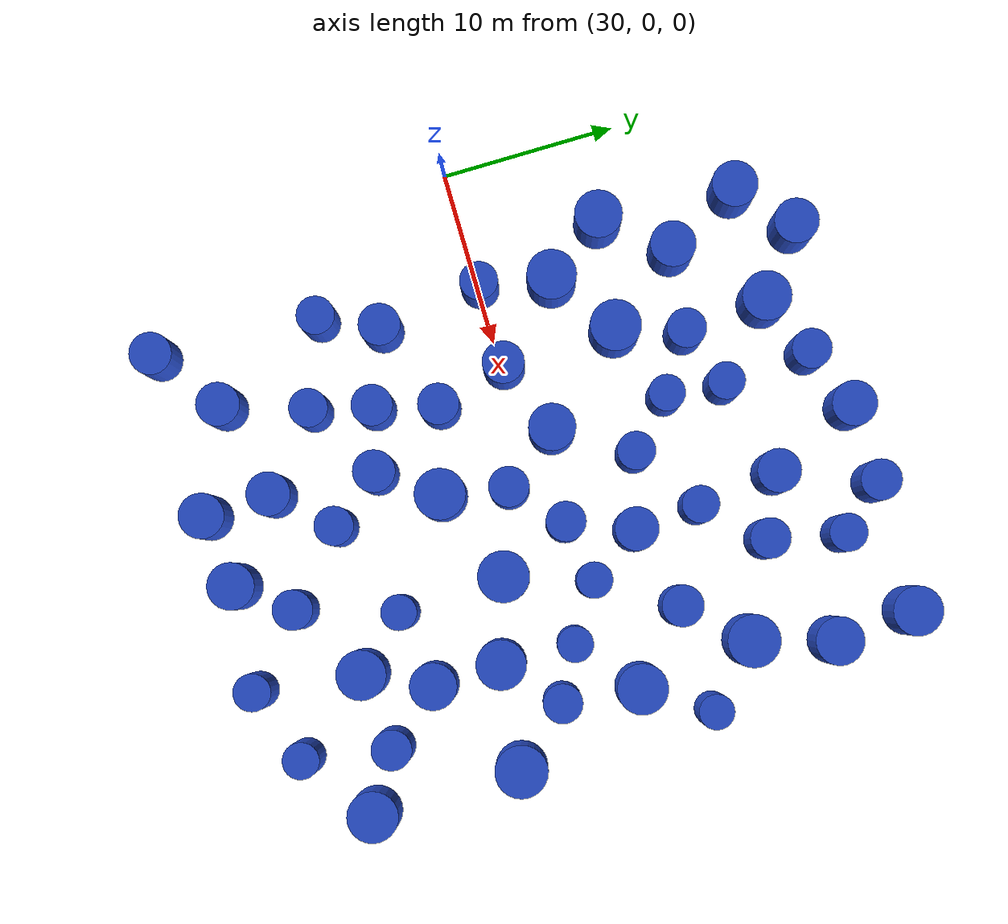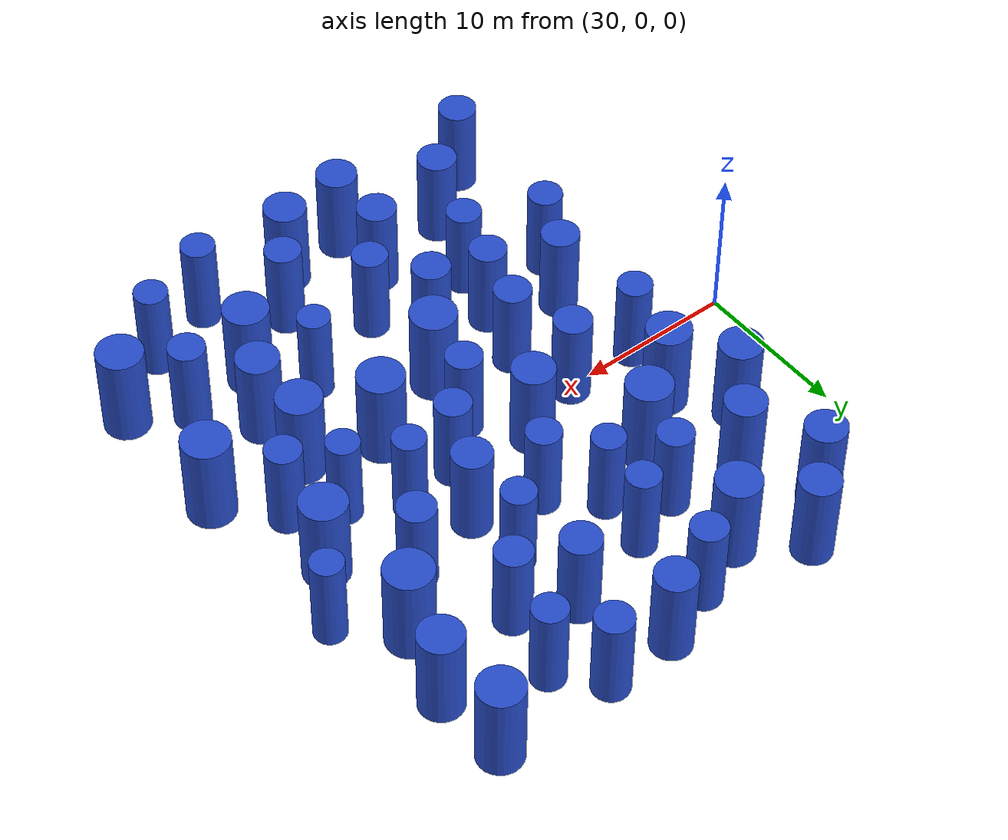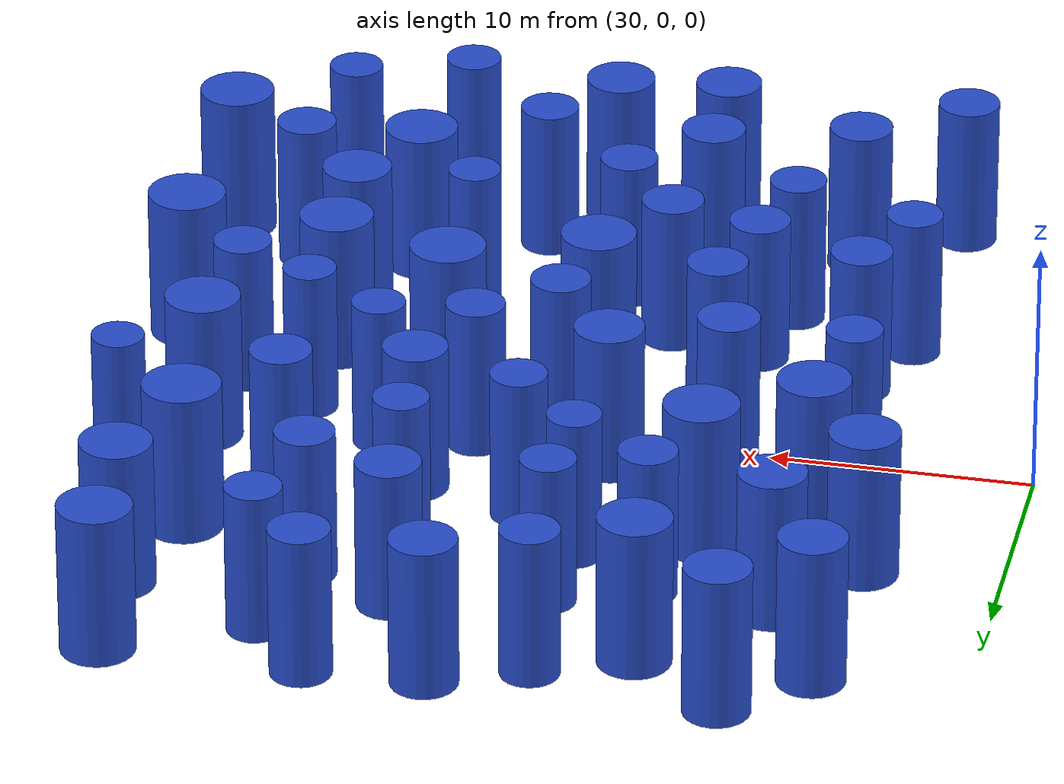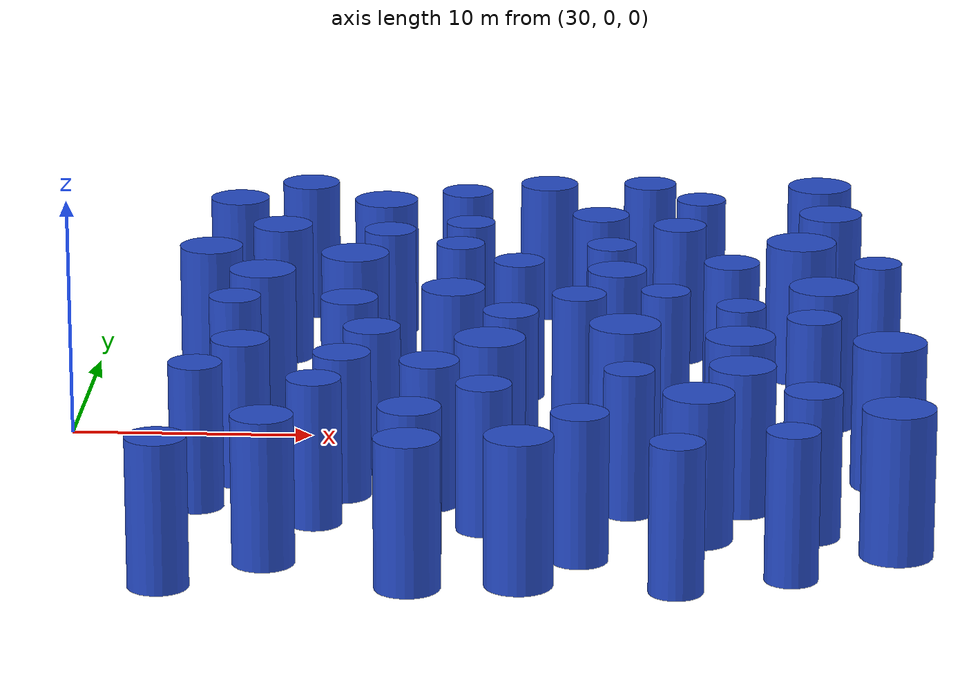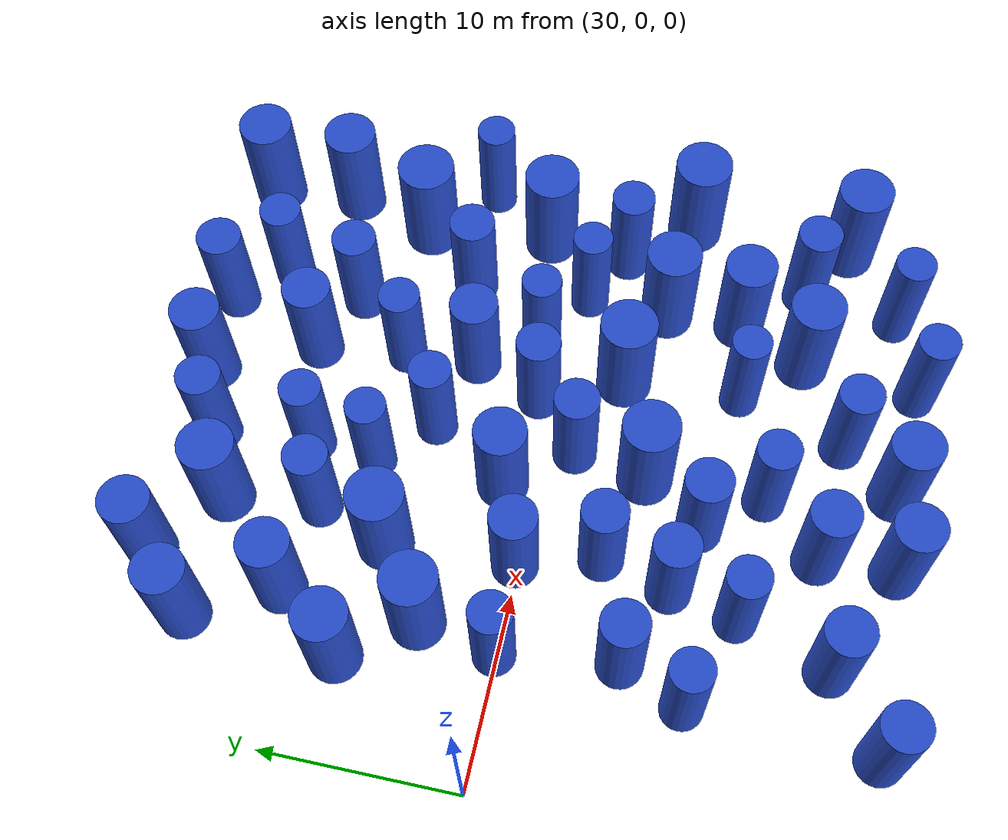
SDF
<sdf version="1.7">
 <world name="default">
  <model name="11">
   <static>1</static>
   <link name="link">
    <inertial>
     <mass>2</mass>
     <inertia><ixx>7.02995</ixx><ixy>0</ixy><ixz>0</ixz><iyy>7.02995</iyy><iyz>0</iyz><izz>2.0599</izz></inertia>
    </inertial>
    <collision name="collision">
     <geometry><cylinder><length>6</length><radius>1.43524</radius></cylinder></geometry>
     <surface><contact><collide_without_contact>1</collide_without_contact></contact></surface>
    </collision>
    <visual name="visual">
     <geometry><cylinder><length>6</length><radius>1.43524</radius></cylinder></geometry>
     <material>
      <script><uri>file://media/materials/scripts/gazebo.material</uri><name>Gazebo/Blue</name></script>
     </material>
    </visual>
    <gravity>0</gravity>
   </link>
   <pose>61.2069 2.50664 3 0 -0 0</pose>
  </model>
  <model name="17">
   <static>1</static>
   <link name="link">
    <inertial>
     <mass>2</mass>
     <inertia><ixx>6.6557</ixx><ixy>0</ixy><ixz>0</ixz><iyy>6.6557</iyy><iyz>0</iyz><izz>1.3114</izz></inertia>
    </inertial>
    <collision name="collision">
     <geometry><cylinder><length>6</length><radius>1.14516</radius></cylinder></geometry>
     <surface><contact><collide_without_contact>1</collide_without_contact></contact></surface>
    </collision>
    <visual name="visual">
     <geometry><cylinder><length>6</length><radius>1.14516</radius></cylinder></geometry>
     <material>
      <script><uri>file://media/materials/scripts/gazebo.material</uri><name>Gazebo/Blue</name></script>
     </material>
    </visual>
    <gravity>0</gravity>
   </link>
   <pose>60.5288 -11.8133 3 0 -0 0</pose>
  </model>
  <model name="30">
   <static>1</static>
   <link name="link">
    <inertial>
     <mass>2</mass>
     <inertia><ixx>6.59676</ixx><ixy>0</ixy><ixz>0</ixz><iyy>6.59676</iyy><iyz>0</iyz><izz>1.19353</izz></inertia>
    </inertial>
    <collision name="collision">
     <geometry><cylinder><length>6</length><radius>1.09249</radius></cylinder></geometry>
     <surface><contact><collide_without_contact>1</collide_without_contact></contact></surface>
    </collision>
    <visual name="visual">
     <geometry><cylinder><length>6</length><radius>1.09249</radius></cylinder></geometry>
     <material>
      <script><uri>file://media/materials/scripts/gazebo.material</uri><name>Gazebo/Blue</name></script>
     </material>
    </visual>
    <gravity>0</gravity>
   </link>
   <pose>40.9903 -10.9446 3 0 -0 0</pose>
  </model>
  <model name="34">
   <static>1</static>
   <link name="link">
    <inertial>
     <mass>2</mass>
     <inertia><ixx>7.11619</ixx><ixy>0</ixy><ixz>0</ixz><iyy>7.11619</iyy><iyz>0</iyz><izz>2.23239</izz></inertia>
    </inertial>
    <collision name="collision">
     <geometry><cylinder><length>6</length><radius>1.49412</radius></cylinder></geometry>
     <surface><contact><collide_without_contact>1</collide_without_contact></contact></surface>
    </collision>
    <visual name="visual">
     <geometry><cylinder><length>6</length><radius>1.49412</radius></cylinder></geometry>
     <material>
      <script><uri>file://media/materials/scripts/gazebo.material</uri><name>Gazebo/Blue</name></script>
     </material>
    </visual>
    <gravity>0</gravity>
   </link>
   <pose>63.7051 -5.23512 3 0 -0 0</pose>
  </model>
  <model name="48">
   <static>1</static>
   <link name="link">
    <inertial>
     <mass>2</mass>
     <inertia><ixx>6.63801</ixx><ixy>0</ixy><ixz>0</ixz><iyy>6.63801</iyy><iyz>0</iyz><izz>1.27603</izz></inertia>
    </inertial>
    <collision name="collision">
     <geometry><cylinder><length>6</length><radius>1.12961</radius></cylinder></geometry>
     <surface><contact><collide_without_contact>1</collide_without_contact></contact></surface>
    </collision>
    <visual name="visual">
     <geometry><cylinder><length>6</length><radius>1.12961</radius></cylinder></geometry>
     <material>
      <script><uri>file://media/materials/scripts/gazebo.material</uri><name>Gazebo/Blue</name></script>
     </material>
    </visual>
    <gravity>0</gravity>
   </link>
   <pose>51.0793 1.04063 3 0 -0 0</pose>
  </model>
  <model name="79">
   <static>1</static>
   <link name="link">
    <inertial>
     <mass>2</mass>
     <inertia><ixx>6.61377</ixx><ixy>0</ixy><ixz>0</ixz><iyy>6.61377</iyy><iyz>0</iyz><izz>1.22755</izz></inertia>
    </inertial>
    <collision name="collision">
     <geometry><cylinder><length>6</length><radius>1.10795</radius></cylinder></geometry>
     <surface><contact><collide_without_contact>1</collide_without_contact></contact></surface>
    </collision>
    <visual name="visual">
     <geometry><cylinder><length>6</length><radius>1.10795</radius></cylinder></geometry>
     <material>
      <script><uri>file://media/materials/scripts/gazebo.material</uri><name>Gazebo/Blue</name></script>
     </material>
    </visual>
    <gravity>0</gravity>
   </link>
   <pose>47.69 -11.4119 3 0 -0 0</pose>
  </model>
  <model name="80">
   <static>1</static>
   <link name="link">
    <inertial>
     <mass>2</mass>
     <inertia><ixx>6.81051</ixx><ixy>0</ixy><ixz>0</ixz><iyy>6.81051</iyy><iyz>0</iyz><izz>1.62103</izz></inertia>
    </inertial>
    <collision name="collision">
     <geometry><cylinder><length>6</length><radius>1.2732</radius></cylinder></geometry>
     <surface><contact><collide_without_contact>1</collide_without_contact></contact></surface>
    </collision>
    <visual name="visual">
     <geometry><cylinder><length>6</length><radius>1.2732</radius></cylinder></geometry>
     <material>
      <script><uri>file://media/materials/scripts/gazebo.material</uri><name>Gazebo/Blue</name></script>
     </material>
    </visual>
    <gravity>0</gravity>
   </link>
   <pose>49.2882 18.3032 3 0 -0 0</pose>
  </model>
  <model name="88">
   <static>1</static>
   <link name="link">
    <inertial>
     <mass>2</mass>
     <inertia><ixx>6.58357</ixx><ixy>0</ixy><ixz>0</ixz><iyy>6.58357</iyy><iyz>0</iyz><izz>1.16715</izz></inertia>
    </inertial>
    <collision name="collision">
     <geometry><cylinder><length>6</length><radius>1.08035</radius></cylinder></geometry>
     <surface><contact><collide_without_contact>1</collide_without_contact></contact></surface>
    </collision>
    <visual name="visual">
     <geometry><cylinder><length>6</length><radius>1.08035</radius></cylinder></geometry>
     <material>
      <script><uri>file://media/materials/scripts/gazebo.material</uri><name>Gazebo/Blue</name></script>
     </material>
    </visual>
    <gravity>0</gravity>
   </link>
   <pose>48.4046 5.9061 3 0 -0 0</pose>
  </model>
  <model name="100">
   <static>1</static>
   <link name="link">
    <inertial>
     <mass>2</mass>
     <inertia><ixx>7.03772</ixx><ixy>0</ixy><ixz>0</ixz><iyy>7.03772</iyy><iyz>0</iyz><izz>2.07544</izz></inertia>
    </inertial>
    <collision name="collision">
     <geometry><cylinder><length>6</length><radius>1.44064</radius></cylinder></geometry>
     <surface><contact><collide_without_contact>1</collide_without_contact></contact></surface>
    </collision>
    <visual name="visual">
     <geometry><cylinder><length>6</length><radius>1.44064</radius></cylinder></geometry>
     <material>
      <script><uri>file://media/materials/scripts/gazebo.material</uri><name>Gazebo/Blue</name></script>
     </material>
    </visual>
    <gravity>0</gravity>
   </link>
   <pose>41.3796 6.77527 3 0 -0 0</pose>
  </model>
  <model name="101">
   <static>1</static>
   <link name="link">
    <inertial>
     <mass>2</mass>
     <inertia><ixx>6.97201</ixx><ixy>0</ixy><ixz>0</ixz><iyy>6.97201</iyy><iyz>0</iyz><izz>1.94403</izz></inertia>
    </inertial>
    <collision name="collision">
     <geometry><cylinder><length>6</length><radius>1.39428</radius></cylinder></geometry>
     <surface><contact><collide_without_contact>1</collide_without_contact></contact></surface>
    </collision>
    <visual name="visual">
     <geometry><cylinder><length>6</length><radius>1.39428</radius></cylinder></geometry>
     <material>
      <script><uri>file://media/materials/scripts/gazebo.material</uri><name>Gazebo/Blue</name></script>
     </material>
    </visual>
    <gravity>0</gravity>
   </link>
   <pose>42.1726 15.323 3 0 -0 0</pose>
  </model>
  <model name="115">
   <static>1</static>
   <link name="link">
    <inertial>
     <mass>2</mass>
     <inertia><ixx>6.7016</ixx><ixy>0</ixy><ixz>0</ixz><iyy>6.7016</iyy><iyz>0</iyz><izz>1.40319</izz></inertia>
    </inertial>
    <collision name="collision">
     <geometry><cylinder><length>6</length><radius>1.18457</radius></cylinder></geometry>
     <surface><contact><collide_without_contact>1</collide_without_contact></contact></surface>
    </collision>
    <visual name="visual">
     <geometry><cylinder><length>6</length><radius>1.18457</radius></cylinder></geometry>
     <material>
      <script><uri>file://media/materials/scripts/gazebo.material</uri><name>Gazebo/Blue</name></script>
     </material>
    </visual>
    <gravity>0</gravity>
   </link>
   <pose>37.6356 -5.8535 3 0 -0 0</pose>
  </model>
  <model name="132">
   <static>1</static>
   <link name="link">
    <inertial>
     <mass>2</mass>
     <inertia><ixx>7.06578</ixx><ixy>0</ixy><ixz>0</ixz><iyy>7.06578</iyy><iyz>0</iyz><izz>2.13157</izz></inertia>
    </inertial>
    <collision name="collision">
     <geometry><cylinder><length>6</length><radius>1.45999</radius></cylinder></geometry>
     <surface><contact><collide_without_contact>1</collide_without_contact></contact></surface>
    </collision>
    <visual name="visual">
     <geometry><cylinder><length>6</length><radius>1.45999</radius></cylinder></geometry>
     <material>
      <script><uri>file://media/materials/scripts/gazebo.material</uri><name>Gazebo/Blue</name></script>
     </material>
    </visual>
    <gravity>0</gravity>
   </link>
   <pose>53.0488 -3.15809 3 0 -0 0</pose>
  </model>
  <model name="142">
   <static>1</static>
   <link name="link">
    <inertial>
     <mass>2</mass>
     <inertia><ixx>6.54322</ixx><ixy>0</ixy><ixz>0</ixz><iyy>6.54322</iyy><iyz>0</iyz><izz>1.08645</izz></inertia>
    </inertial>
    <collision name="collision">
     <geometry><cylinder><length>6</length><radius>1.04233</radius></cylinder></geometry>
     <surface><contact><collide_without_contact>1</collide_without_contact></contact></surface>
    </collision>
    <visual name="visual">
     <geometry><cylinder><length>6</length><radius>1.04233</radius></cylinder></geometry>
     <material>
      <script><uri>file://media/materials/scripts/gazebo.material</uri><name>Gazebo/Blue</name></script>
     </material>
    </visual>
    <gravity>0</gravity>
   </link>
   <pose>59.6798 -16.7969 3 0 -0 0</pose>
  </model>
  <model name="153">
   <static>1</static>
   <link name="link">
    <inertial>
     <mass>2</mass>
     <inertia><ixx>6.75676</ixx><ixy>0</ixy><ixz>0</ixz><iyy>6.75676</iyy><iyz>0</iyz><izz>1.51353</izz></inertia>
    </inertial>
    <collision name="collision">
     <geometry><cylinder><length>6</length><radius>1.23026</radius></cylinder></geometry>
     <surface><contact><collide_without_contact>1</collide_without_contact></contact></surface>
    </collision>
    <visual name="visual">
     <geometry><cylinder><length>6</length><radius>1.23026</radius></cylinder></geometry>
     <material>
      <script><uri>file://media/materials/scripts/gazebo.material</uri><name>Gazebo/Blue</name></script>
     </material>
    </visual>
    <gravity>0</gravity>
   </link>
   <pose>39.3767 -15.7111 3 0 -0 0</pose>
  </model>
  <model name="156">
   <static>1</static>
   <link name="link">
    <inertial>
     <mass>2</mass>
     <inertia><ixx>6.51987</ixx><ixy>0</ixy><ixz>0</ixz><iyy>6.51987</iyy><iyz>0</iyz><izz>1.03974</izz></inertia>
    </inertial>
    <collision name="collision">
     <geometry><cylinder><length>6</length><radius>1.01968</radius></cylinder></geometry>
     <surface><contact><collide_without_contact>1</collide_without_contact></contact></surface>
    </collision>
    <visual name="visual">
     <geometry><cylinder><length>6</length><radius>1.01968</radius></cylinder></geometry>
     <material>
      <script><uri>file://media/materials/scripts/gazebo.material</uri><name>Gazebo/Blue</name></script>
     </material>
    </visual>
    <gravity>0</gravity>
   </link>
   <pose>57.7686 -0.379096 3 0 -0 0</pose>
  </model>
  <model name="164">
   <static>1</static>
   <link name="link">
    <inertial>
     <mass>2</mass>
     <inertia><ixx>6.6537</ixx><ixy>0</ixy><ixz>0</ixz><iyy>6.6537</iyy><iyz>0</iyz><izz>1.3074</izz></inertia>
    </inertial>
    <collision name="collision">
     <geometry><cylinder><length>6</length><radius>1.14342</radius></cylinder></geometry>
     <surface><contact><collide_without_contact>1</collide_without_contact></contact></surface>
    </collision>
    <visual name="visual">
     <geometry><cylinder><length>6</length><radius>1.14342</radius></cylinder></geometry>
     <material>
      <script><uri>file://media/materials/scripts/gazebo.material</uri><name>Gazebo/Blue</name></script>
     </material>
    </visual>
    <gravity>0</gravity>
   </link>
   <pose>55.1662 11.6816 3 0 -0 0</pose>
  </model>
  <model name="165">
   <static>1</static>
   <link name="link">
    <inertial>
     <mass>2</mass>
     <inertia><ixx>6.67738</ixx><ixy>0</ixy><ixz>0</ixz><iyy>6.67738</iyy><iyz>0</iyz><izz>1.35476</izz></inertia>
    </inertial>
    <collision name="collision">
     <geometry><cylinder><length>6</length><radius>1.16394</radius></cylinder></geometry>
     <surface><contact><collide_without_contact>1</collide_without_contact></contact></surface>
    </collision>
    <visual name="visual">
     <geometry><cylinder><length>6</length><radius>1.16394</radius></cylinder></geometry>
     <material>
      <script><uri>file://media/materials/scripts/gazebo.material</uri><name>Gazebo/Blue</name></script>
     </material>
    </visual>
    <gravity>0</gravity>
   </link>
   <pose>42.8086 -3.93369 3 0 -0 0</pose>
  </model>
  <model name="173">
   <static>1</static>
   <link name="link">
    <inertial>
     <mass>2</mass>
     <inertia><ixx>6.89217</ixx><ixy>0</ixy><ixz>0</ixz><iyy>6.89217</iyy><iyz>0</iyz><izz>1.78434</izz></inertia>
    </inertial>
    <collision name="collision">
     <geometry><cylinder><length>6</length><radius>1.33579</radius></cylinder></geometry>
     <surface><contact><collide_without_contact>1</collide_without_contact></contact></surface>
    </collision>
    <visual name="visual">
     <geometry><cylinder><length>6</length><radius>1.33579</radius></cylinder></geometry>
     <material>
      <script><uri>file://media/materials/scripts/gazebo.material</uri><name>Gazebo/Blue</name></script>
     </material>
    </visual>
    <gravity>0</gravity>
   </link>
   <pose>49.2967 -17.8435 3 0 -0 0</pose>
  </model>
  <model name="195">
   <static>1</static>
   <link name="link">
    <inertial>
     <mass>2</mass>
     <inertia><ixx>6.99291</ixx><ixy>0</ixy><ixz>0</ixz><iyy>6.99291</iyy><iyz>0</iyz><izz>1.98583</izz></inertia>
    </inertial>
    <collision name="collision">
     <geometry><cylinder><length>6</length><radius>1.40919</radius></cylinder></geometry>
     <surface><contact><collide_without_contact>1</collide_without_contact></contact></surface>
    </collision>
    <visual name="visual">
     <geometry><cylinder><length>6</length><radius>1.40919</radius></cylinder></geometry>
     <material>
      <script><uri>file://media/materials/scripts/gazebo.material</uri><name>Gazebo/Blue</name></script>
     </material>
    </visual>
    <gravity>0</gravity>
   </link>
   <pose>56.0693 -12.2752 3 0 -0 0</pose>
  </model>
  <model name="196">
   <static>1</static>
   <link name="link">
    <inertial>
     <mass>2</mass>
     <inertia><ixx>6.5818</ixx><ixy>0</ixy><ixz>0</ixz><iyy>6.5818</iyy><iyz>0</iyz><izz>1.1636</izz></inertia>
    </inertial>
    <collision name="collision">
     <geometry><cylinder><length>6</length><radius>1.0787</radius></cylinder></geometry>
     <surface><contact><collide_without_contact>1</collide_without_contact></contact></surface>
    </collision>
    <visual name="visual">
     <geometry><cylinder><length>6</length><radius>1.0787</radius></cylinder></geometry>
     <material>
      <script><uri>file://media/materials/scripts/gazebo.material</uri><name>Gazebo/Blue</name></script>
     </material>
    </visual>
    <gravity>0</gravity>
   </link>
   <pose>36.8574 0.148464 3 0 -0 0</pose>
  </model>
  <model name="220">
   <static>1</static>
   <link name="link">
    <inertial>
     <mass>2</mass>
     <inertia><ixx>6.57614</ixx><ixy>0</ixy><ixz>0</ixz><iyy>6.57614</iyy><iyz>0</iyz><izz>1.15228</izz></inertia>
    </inertial>
    <collision name="collision">
     <geometry><cylinder><length>6</length><radius>1.07344</radius></cylinder></geometry>
     <surface><contact><collide_without_contact>1</collide_without_contact></contact></surface>
    </collision>
    <visual name="visual">
     <geometry><cylinder><length>6</length><radius>1.07344</radius></cylinder></geometry>
     <material>
      <script><uri>file://media/materials/scripts/gazebo.material</uri><name>Gazebo/Blue</name></script>
     </material>
    </visual>
    <gravity>0</gravity>
   </link>
   <pose>56.0828 15.9312 3 0 -0 0</pose>
  </model>
  <model name="224">
   <static>1</static>
   <link name="link">
    <inertial>
     <mass>2</mass>
     <inertia><ixx>6.98111</ixx><ixy>0</ixy><ixz>0</ixz><iyy>6.98111</iyy><iyz>0</iyz><izz>1.96222</izz></inertia>
    </inertial>
    <collision name="collision">
     <geometry><cylinder><length>6</length><radius>1.40079</radius></cylinder></geometry>
     <surface><contact><collide_without_contact>1</collide_without_contact></contact></surface>
    </collision>
    <visual name="visual">
     <geometry><cylinder><length>6</length><radius>1.40079</radius></cylinder></geometry>
     <material>
      <script><uri>file://media/materials/scripts/gazebo.material</uri><name>Gazebo/Blue</name></script>
     </material>
    </visual>
    <gravity>0</gravity>
   </link>
   <pose>37.658 4.14666 3 0 -0 0</pose>
  </model>
  <model name="243">
   <static>1</static>
   <link name="link">
    <inertial>
     <mass>2</mass>
     <inertia><ixx>6.76427</ixx><ixy>0</ixy><ixz>0</ixz><iyy>6.76427</iyy><iyz>0</iyz><izz>1.52854</izz></inertia>
    </inertial>
    <collision name="collision">
     <geometry><cylinder><length>6</length><radius>1.23634</radius></cylinder></geometry>
     <surface><contact><collide_without_contact>1</collide_without_contact></contact></surface>
    </collision>
    <visual name="visual">
     <geometry><cylinder><length>6</length><radius>1.23634</radius></cylinder></geometry>
     <material>
      <script><uri>file://media/materials/scripts/gazebo.material</uri><name>Gazebo/Blue</name></script>
     </material>
    </visual>
    <gravity>0</gravity>
   </link>
   <pose>51.7038 13.2163 3 0 -0 0</pose>
  </model>
  <model name="245">
   <static>1</static>
   <link name="link">
    <inertial>
     <mass>2</mass>
     <inertia><ixx>6.55697</ixx><ixy>0</ixy><ixz>0</ixz><iyy>6.55697</iyy><iyz>0</iyz><izz>1.11395</izz></inertia>
    </inertial>
    <collision name="collision">
     <geometry><cylinder><length>6</length><radius>1.05544</radius></cylinder></geometry>
     <surface><contact><collide_without_contact>1</collide_without_contact></contact></surface>
    </collision>
    <visual name="visual">
     <geometry><cylinder><length>6</length><radius>1.05544</radius></cylinder></geometry>
     <material>
      <script><uri>file://media/materials/scripts/gazebo.material</uri><name>Gazebo/Blue</name></script>
     </material>
    </visual>
    <gravity>0</gravity>
   </link>
   <pose>46.079 11.8162 3 0 -0 0</pose>
  </model>
  <model name="251">
   <static>1</static>
   <link name="link">
    <inertial>
     <mass>2</mass>
     <inertia><ixx>6.62252</ixx><ixy>0</ixy><ixz>0</ixz><iyy>6.62252</iyy><iyz>0</iyz><izz>1.24504</izz></inertia>
    </inertial>
    <collision name="collision">
     <geometry><cylinder><length>6</length><radius>1.11581</radius></cylinder></geometry>
     <surface><contact><collide_without_contact>1</collide_without_contact></contact></surface>
    </collision>
    <visual name="visual">
     <geometry><cylinder><length>6</length><radius>1.11581</radius></cylinder></geometry>
     <material>
      <script><uri>file://media/materials/scripts/gazebo.material</uri><name>Gazebo/Blue</name></script>
     </material>
    </visual>
    <gravity>0</gravity>
   </link>
   <pose>42.6379 10.5206 3 0 -0 0</pose>
  </model>
  <model name="256">
   <static>1</static>
   <link name="link">
    <inertial>
     <mass>2</mass>
     <inertia><ixx>6.82907</ixx><ixy>0</ixy><ixz>0</ixz><iyy>6.82907</iyy><iyz>0</iyz><izz>1.65815</izz></inertia>
    </inertial>
    <collision name="collision">
     <geometry><cylinder><length>6</length><radius>1.28769</radius></cylinder></geometry>
     <surface><contact><collide_without_contact>1</collide_without_contact></contact></surface>
    </collision>
    <visual name="visual">
     <geometry><cylinder><length>6</length><radius>1.28769</radius></cylinder></geometry>
     <material>
      <script><uri>file://media/materials/scripts/gazebo.material</uri><name>Gazebo/Blue</name></script>
     </material>
    </visual>
    <gravity>0</gravity>
   </link>
   <pose>37.9289 11.123 3 0 -0 0</pose>
  </model>
  <model name="259">
   <static>1</static>
   <link name="link">
    <inertial>
     <mass>2</mass>
     <inertia><ixx>6.83386</ixx><ixy>0</ixy><ixz>0</ixz><iyy>6.83386</iyy><iyz>0</iyz><izz>1.66773</izz></inertia>
    </inertial>
    <collision name="collision">
     <geometry><cylinder><length>6</length><radius>1.29141</radius></cylinder></geometry>
     <surface><contact><collide_without_contact>1</collide_without_contact></contact></surface>
    </collision>
    <visual name="visual">
     <geometry><cylinder><length>6</length><radius>1.29141</radius></cylinder></geometry>
     <material>
      <script><uri>file://media/materials/scripts/gazebo.material</uri><name>Gazebo/Blue</name></script>
     </material>
    </visual>
    <gravity>0</gravity>
   </link>
   <pose>35.678 15.3807 3 0 -0 0</pose>
  </model>
  <model name="289">
   <static>1</static>
   <link name="link">
    <inertial>
     <mass>2</mass>
     <inertia><ixx>6.69814</ixx><ixy>0</ixy><ixz>0</ixz><iyy>6.69814</iyy><iyz>0</iyz><izz>1.39627</izz></inertia>
    </inertial>
    <collision name="collision">
     <geometry><cylinder><length>6</length><radius>1.18164</radius></cylinder></geometry>
     <surface><contact><collide_without_contact>1</collide_without_contact></contact></surface>
    </collision>
    <visual name="visual">
     <geometry><cylinder><length>6</length><radius>1.18164</radius></cylinder></geometry>
     <material>
      <script><uri>file://media/materials/scripts/gazebo.material</uri><name>Gazebo/Blue</name></script>
     </material>
    </visual>
    <gravity>0</gravity>
   </link>
   <pose>57.4033 5.95017 3 0 -0 0</pose>
  </model>
  <model name="294">
   <static>1</static>
   <link name="link">
    <inertial>
     <mass>2</mass>
     <inertia><ixx>6.58297</ixx><ixy>0</ixy><ixz>0</ixz><iyy>6.58297</iyy><iyz>0</iyz><izz>1.16595</izz></inertia>
    </inertial>
    <collision name="collision">
     <geometry><cylinder><length>6</length><radius>1.07979</radius></cylinder></geometry>
     <surface><contact><collide_without_contact>1</collide_without_contact></contact></surface>
    </collision>
    <visual name="visual">
     <geometry><cylinder><length>6</length><radius>1.07979</radius></cylinder></geometry>
     <material>
      <script><uri>file://media/materials/scripts/gazebo.material</uri><name>Gazebo/Blue</name></script>
     </material>
    </visual>
    <gravity>0</gravity>
   </link>
   <pose>36.1496 -9.12166 3 0 -0 0</pose>
  </model>
  <model name="302">
   <static>1</static>
   <link name="link">
    <inertial>
     <mass>2</mass>
     <inertia><ixx>6.88818</ixx><ixy>0</ixy><ixz>0</ixz><iyy>6.88818</iyy><iyz>0</iyz><izz>1.77635</izz></inertia>
    </inertial>
    <collision name="collision">
     <geometry><cylinder><length>6</length><radius>1.3328</radius></cylinder></geometry>
     <surface><contact><collide_without_contact>1</collide_without_contact></contact></surface>
    </collision>
    <visual name="visual">
     <geometry><cylinder><length>6</length><radius>1.3328</radius></cylinder></geometry>
     <material>
      <script><uri>file://media/materials/scripts/gazebo.material</uri><name>Gazebo/Blue</name></script>
     </material>
    </visual>
    <gravity>0</gravity>
   </link>
   <pose>57.7987 -8.61449 3 0 -0 0</pose>
  </model>
  <model name="327">
   <static>1</static>
   <link name="link">
    <inertial>
     <mass>2</mass>
     <inertia><ixx>6.98782</ixx><ixy>0</ixy><ixz>0</ixz><iyy>6.98782</iyy><iyz>0</iyz><izz>1.97563</izz></inertia>
    </inertial>
    <collision name="collision">
     <geometry><cylinder><length>6</length><radius>1.40557</radius></cylinder></geometry>
     <surface><contact><collide_without_contact>1</collide_without_contact></contact></surface>
    </collision>
    <visual name="visual">
     <geometry><cylinder><length>6</length><radius>1.40557</radius></cylinder></geometry>
     <material>
      <script><uri>file://media/materials/scripts/gazebo.material</uri><name>Gazebo/Blue</name></script>
     </material>
    </visual>
    <gravity>0</gravity>
   </link>
   <pose>61.3528 18.3974 3 0 -0 0</pose>
  </model>
  <model name="331">
   <static>1</static>
   <link name="link">
    <inertial>
     <mass>2</mass>
     <inertia><ixx>6.76273</ixx><ixy>0</ixy><ixz>0</ixz><iyy>6.76273</iyy><iyz>0</iyz><izz>1.52547</izz></inertia>
    </inertial>
    <collision name="collision">
     <geometry><cylinder><length>6</length><radius>1.2351</radius></cylinder></geometry>
     <surface><contact><collide_without_contact>1</collide_without_contact></contact></surface>
    </collision>
    <visual name="visual">
     <geometry><cylinder><length>6</length><radius>1.2351</radius></cylinder></geometry>
     <material>
      <script><uri>file://media/materials/scripts/gazebo.material</uri><name>Gazebo/Blue</name></script>
     </material>
    </visual>
    <gravity>0</gravity>
   </link>
   <pose>52.576 4.70262 3 0 -0 0</pose>
  </model>
  <model name="338">
   <static>1</static>
   <link name="link">
    <inertial>
     <mass>2</mass>
     <inertia><ixx>6.56856</ixx><ixy>0</ixy><ixz>0</ixz><iyy>6.56856</iyy><iyz>0</iyz><izz>1.13711</izz></inertia>
    </inertial>
    <collision name="collision">
     <geometry><cylinder><length>6</length><radius>1.06635</radius></cylinder></geometry>
     <surface><contact><collide_without_contact>1</collide_without_contact></contact></surface>
    </collision>
    <visual name="visual">
     <geometry><cylinder><length>6</length><radius>1.06635</radius></cylinder></geometry>
     <material>
      <script><uri>file://media/materials/scripts/gazebo.material</uri><name>Gazebo/Blue</name></script>
     </material>
    </visual>
    <gravity>0</gravity>
   </link>
   <pose>55.2958 -18.3451 3 0 -0 0</pose>
  </model>
  <model name="348">
   <static>1</static>
   <link name="link">
    <inertial>
     <mass>2</mass>
     <inertia><ixx>6.76808</ixx><ixy>0</ixy><ixz>0</ixz><iyy>6.76808</iyy><iyz>0</iyz><izz>1.53616</izz></inertia>
    </inertial>
    <collision name="collision">
     <geometry><cylinder><length>6</length><radius>1.23942</radius></cylinder></geometry>
     <surface><contact><collide_without_contact>1</collide_without_contact></contact></surface>
    </collision>
    <visual name="visual">
     <geometry><cylinder><length>6</length><radius>1.23942</radius></cylinder></geometry>
     <material>
      <script><uri>file://media/materials/scripts/gazebo.material</uri><name>Gazebo/Blue</name></script>
     </material>
    </visual>
    <gravity>0</gravity>
   </link>
   <pose>44.9562 -14.4144 3 0 -0 0</pose>
  </model>
  <model name="350">
   <static>1</static>
   <link name="link">
    <inertial>
     <mass>2</mass>
     <inertia><ixx>7.11754</ixx><ixy>0</ixy><ixz>0</ixz><iyy>7.11754</iyy><iyz>0</iyz><izz>2.23507</izz></inertia>
    </inertial>
    <collision name="collision">
     <geometry><cylinder><length>6</length><radius>1.49502</radius></cylinder></geometry>
     <surface><contact><collide_without_contact>1</collide_without_contact></contact></surface>
    </collision>
    <visual name="visual">
     <geometry><cylinder><length>6</length><radius>1.49502</radius></cylinder></geometry>
     <material>
      <script><uri>file://media/materials/scripts/gazebo.material</uri><name>Gazebo/Blue</name></script>
     </material>
    </visual>
    <gravity>0</gravity>
   </link>
   <pose>60.3901 9.19235 3 0 -0 0</pose>
  </model>
  <model name="356">
   <static>1</static>
   <link name="link">
    <inertial>
     <mass>2</mass>
     <inertia><ixx>6.56002</ixx><ixy>0</ixy><ixz>0</ixz><iyy>6.56002</iyy><iyz>0</iyz><izz>1.12003</izz></inertia>
    </inertial>
    <collision name="collision">
     <geometry><cylinder><length>6</length><radius>1.05832</radius></cylinder></geometry>
     <surface><contact><collide_without_contact>1</collide_without_contact></contact></surface>
    </collision>
    <visual name="visual">
     <geometry><cylinder><length>6</length><radius>1.05832</radius></cylinder></geometry>
     <material>
      <script><uri>file://media/materials/scripts/gazebo.material</uri><name>Gazebo/Blue</name></script>
     </material>
    </visual>
    <gravity>0</gravity>
   </link>
   <pose>52.2683 8.50048 3 0 -0 0</pose>
  </model>
  <model name="363">
   <static>1</static>
   <link name="link">
    <inertial>
     <mass>2</mass>
     <inertia><ixx>6.93828</ixx><ixy>0</ixy><ixz>0</ixz><iyy>6.93828</iyy><iyz>0</iyz><izz>1.87657</izz></inertia>
    </inertial>
    <collision name="collision">
     <geometry><cylinder><length>6</length><radius>1.36988</radius></cylinder></geometry>
     <surface><contact><collide_without_contact>1</collide_without_contact></contact></surface>
    </collision>
    <visual name="visual">
     <geometry><cylinder><length>6</length><radius>1.36988</radius></cylinder></geometry>
     <material>
      <script><uri>file://media/materials/scripts/gazebo.material</uri><name>Gazebo/Blue</name></script>
     </material>
    </visual>
    <gravity>0</gravity>
   </link>
   <pose>61.7303 13.7636 3 0 -0 0</pose>
  </model>
  <model name="375">
   <static>1</static>
   <link name="link">
    <inertial>
     <mass>2</mass>
     <inertia><ixx>7.04344</ixx><ixy>0</ixy><ixz>0</ixz><iyy>7.04344</iyy><iyz>0</iyz><izz>2.08687</izz></inertia>
    </inertial>
    <collision name="collision">
     <geometry><cylinder><length>6</length><radius>1.4446</radius></cylinder></geometry>
     <surface><contact><collide_without_contact>1</collide_without_contact></contact></surface>
    </collision>
    <visual name="visual">
     <geometry><cylinder><length>6</length><radius>1.4446</radius></cylinder></geometry>
     <material>
      <script><uri>file://media/materials/scripts/gazebo.material</uri><name>Gazebo/Blue</name></script>
     </material>
    </visual>
    <gravity>0</gravity>
   </link>
   <pose>47.649 -5.25731 3 0 -0 0</pose>
  </model>
  <model name="379">
   <static>1</static>
   <link name="link">
    <inertial>
     <mass>2</mass>
     <inertia><ixx>6.67128</ixx><ixy>0</ixy><ixz>0</ixz><iyy>6.67128</iyy><iyz>0</iyz><izz>1.34257</izz></inertia>
    </inertial>
    <collision name="collision">
     <geometry><cylinder><length>6</length><radius>1.15869</radius></cylinder></geometry>
     <surface><contact><collide_without_contact>1</collide_without_contact></contact></surface>
    </collision>
    <visual name="visual">
     <geometry><cylinder><length>6</length><radius>1.15869</radius></cylinder></geometry>
     <material>
      <script><uri>file://media/materials/scripts/gazebo.material</uri><name>Gazebo/Blue</name></script>
     </material>
    </visual>
    <gravity>0</gravity>
   </link>
   <pose>53.7832 18.5167 3 0 -0 0</pose>
  </model>
  <model name="385">
   <static>1</static>
   <link name="link">
    <inertial>
     <mass>2</mass>
     <inertia><ixx>6.82617</ixx><ixy>0</ixy><ixz>0</ixz><iyy>6.82617</iyy><iyz>0</iyz><izz>1.65235</izz></inertia>
    </inertial>
    <collision name="collision">
     <geometry><cylinder><length>6</length><radius>1.28544</radius></cylinder></geometry>
     <surface><contact><collide_without_contact>1</collide_without_contact></contact></surface>
    </collision>
    <visual name="visual">
     <geometry><cylinder><length>6</length><radius>1.28544</radius></cylinder></geometry>
     <material>
      <script><uri>file://media/materials/scripts/gazebo.material</uri><name>Gazebo/Blue</name></script>
     </material>
    </visual>
    <gravity>0</gravity>
   </link>
   <pose>45.0873 -18.3219 3 0 -0 0</pose>
  </model>
  <model name="386">
   <static>1</static>
   <link name="link">
    <inertial>
     <mass>2</mass>
     <inertia><ixx>6.88484</ixx><ixy>0</ixy><ixz>0</ixz><iyy>6.88484</iyy><iyz>0</iyz><izz>1.76968</izz></inertia>
    </inertial>
    <collision name="collision">
     <geometry><cylinder><length>6</length><radius>1.33029</radius></cylinder></geometry>
     <surface><contact><collide_without_contact>1</collide_without_contact></contact></surface>
    </collision>
    <visual name="visual">
     <geometry><cylinder><length>6</length><radius>1.33029</radius></cylinder></geometry>
     <material>
      <script><uri>file://media/materials/scripts/gazebo.material</uri><name>Gazebo/Blue</name></script>
     </material>
    </visual>
    <gravity>0</gravity>
   </link>
   <pose>45.8238 1.78322 3 0 -0 0</pose>
  </model>
  <model name="387">
   <static>1</static>
   <link name="link">
    <inertial>
     <mass>2</mass>
     <inertia><ixx>6.50941</ixx><ixy>0</ixy><ixz>0</ixz><iyy>6.50941</iyy><iyz>0</iyz><izz>1.01882</izz></inertia>
    </inertial>
    <collision name="collision">
     <geometry><cylinder><length>6</length><radius>1.00936</radius></cylinder></geometry>
     <surface><contact><collide_without_contact>1</collide_without_contact></contact></surface>
    </collision>
    <visual name="visual">
     <geometry><cylinder><length>6</length><radius>1.00936</radius></cylinder></geometry>
     <material>
      <script><uri>file://media/materials/scripts/gazebo.material</uri><name>Gazebo/Blue</name></script>
     </material>
    </visual>
    <gravity>0</gravity>
   </link>
   <pose>53.324 -9.2897 3 0 -0 0</pose>
  </model>
  <model name="391">
   <static>1</static>
   <link name="link">
    <inertial>
     <mass>2</mass>
     <inertia><ixx>6.64428</ixx><ixy>0</ixy><ixz>0</ixz><iyy>6.64428</iyy><iyz>0</iyz><izz>1.28856</izz></inertia>
    </inertial>
    <collision name="collision">
     <geometry><cylinder><length>6</length><radius>1.13515</radius></cylinder></geometry>
     <surface><contact><collide_without_contact>1</collide_without_contact></contact></surface>
    </collision>
    <visual name="visual">
     <geometry><cylinder><length>6</length><radius>1.13515</radius></cylinder></geometry>
     <material>
      <script><uri>file://media/materials/scripts/gazebo.material</uri><name>Gazebo/Blue</name></script>
     </material>
    </visual>
    <gravity>0</gravity>
   </link>
   <pose>51.529 -14.9127 3 0 -0 0</pose>
  </model>
  <model name="416">
   <static>1</static>
   <link name="link">
    <inertial>
     <mass>2</mass>
     <inertia><ixx>7.04284</ixx><ixy>0</ixy><ixz>0</ixz><iyy>7.04284</iyy><iyz>0</iyz><izz>2.08569</izz></inertia>
    </inertial>
    <collision name="collision">
     <geometry><cylinder><length>6</length><radius>1.44419</radius></cylinder></geometry>
     <surface><contact><collide_without_contact>1</collide_without_contact></contact></surface>
    </collision>
    <visual name="visual">
     <geometry><cylinder><length>6</length><radius>1.44419</radius></cylinder></geometry>
     <material>
      <script><uri>file://media/materials/scripts/gazebo.material</uri><name>Gazebo/Blue</name></script>
     </material>
    </visual>
    <gravity>0</gravity>
   </link>
   <pose>63.7861 -13.8505 3 0 -0 0</pose>
  </model>
  <model name="427">
   <static>1</static>
   <link name="link">
    <inertial>
     <mass>2</mass>
     <inertia><ixx>6.71601</ixx><ixy>0</ixy><ixz>0</ixz><iyy>6.71601</iyy><iyz>0</iyz><izz>1.43202</izz></inertia>
    </inertial>
    <collision name="collision">
     <geometry><cylinder><length>6</length><radius>1.19667</radius></cylinder></geometry>
     <surface><contact><collide_without_contact>1</collide_without_contact></contact></surface>
    </collision>
    <visual name="visual">
     <geometry><cylinder><length>6</length><radius>1.19667</radius></cylinder></geometry>
     <material>
      <script><uri>file://media/materials/scripts/gazebo.material</uri><name>Gazebo/Blue</name></script>
     </material>
    </visual>
    <gravity>0</gravity>
   </link>
   <pose>45.3952 -8.4218 3 0 -0 0</pose>
  </model>
  <model name="438">
   <static>1</static>
   <link name="link">
    <inertial>
     <mass>2</mass>
     <inertia><ixx>6.798</ixx><ixy>0</ixy><ixz>0</ixz><iyy>6.798</iyy><iyz>0</iyz><izz>1.596</izz></inertia>
    </inertial>
    <collision name="collision">
     <geometry><cylinder><length>6</length><radius>1.26333</radius></cylinder></geometry>
     <surface><contact><collide_without_contact>1</collide_without_contact></contact></surface>
    </collision>
    <visual name="visual">
     <geometry><cylinder><length>6</length><radius>1.26333</radius></cylinder></geometry>
     <material>
      <script><uri>file://media/materials/scripts/gazebo.material</uri><name>Gazebo/Blue</name></script>
     </material>
    </visual>
    <gravity>0</gravity>
   </link>
   <pose>38.6211 18.0961 3 0 -0 0</pose>
  </model>
  <model name="449">
   <static>1</static>
   <link name="link">
    <inertial>
     <mass>2</mass>
     <inertia><ixx>6.62276</ixx><ixy>0</ixy><ixz>0</ixz><iyy>6.62276</iyy><iyz>0</iyz><izz>1.24552</izz></inertia>
    </inertial>
    <collision name="collision">
     <geometry><cylinder><length>6</length><radius>1.11603</radius></cylinder></geometry>
     <surface><contact><collide_without_contact>1</collide_without_contact></contact></surface>
    </collision>
    <visual name="visual">
     <geometry><cylinder><length>6</length><radius>1.11603</radius></cylinder></geometry>
     <material>
      <script><uri>file://media/materials/scripts/gazebo.material</uri><name>Gazebo/Blue</name></script>
     </material>
    </visual>
    <gravity>0</gravity>
   </link>
   <pose>60.7308 -1.96525 3 0 -0 0</pose>
  </model>
  <model name="463">
   <static>1</static>
   <link name="link">
    <inertial>
     <mass>2</mass>
     <inertia><ixx>6.90442</ixx><ixy>0</ixy><ixz>0</ixz><iyy>6.90442</iyy><iyz>0</iyz><izz>1.80884</izz></inertia>
    </inertial>
    <collision name="collision">
     <geometry><cylinder><length>6</length><radius>1.34493</radius></cylinder></geometry>
     <surface><contact><collide_without_contact>1</collide_without_contact></contact></surface>
    </collision>
    <visual name="visual">
     <geometry><cylinder><length>6</length><radius>1.34493</radius></cylinder></geometry>
     <material>
      <script><uri>file://media/materials/scripts/gazebo.material</uri><name>Gazebo/Blue</name></script>
     </material>
    </visual>
    <gravity>0</gravity>
   </link>
   <pose>35.1542 7.60131 3 0 -0 0</pose>
  </model>
  <model name="489">
   <static>1</static>
   <link name="link">
    <inertial>
     <mass>2</mass>
     <inertia><ixx>6.70648</ixx><ixy>0</ixy><ixz>0</ixz><iyy>6.70648</iyy><iyz>0</iyz><izz>1.41295</izz></inertia>
    </inertial>
    <collision name="collision">
     <geometry><cylinder><length>6</length><radius>1.18868</radius></cylinder></geometry>
     <surface><contact><collide_without_contact>1</collide_without_contact></contact></surface>
    </collision>
    <visual name="visual">
     <geometry><cylinder><length>6</length><radius>1.18868</radius></cylinder></geometry>
     <material>
      <script><uri>file://media/materials/scripts/gazebo.material</uri><name>Gazebo/Blue</name></script>
     </material>
    </visual>
    <gravity>0</gravity>
   </link>
   <pose>41.6017 0.183634 3 0 -0 0</pose>
  </model>
  <model name="505">
   <static>1</static>
   <link name="link">
    <inertial>
     <mass>2</mass>
     <inertia><ixx>6.63255</ixx><ixy>0</ixy><ixz>0</ixz><iyy>6.63255</iyy><iyz>0</iyz><izz>1.26509</izz></inertia>
    </inertial>
    <collision name="collision">
     <geometry><cylinder><length>6</length><radius>1.12476</radius></cylinder></geometry>
     <surface><contact><collide_without_contact>1</collide_without_contact></contact></surface>
    </collision>
    <visual name="visual">
     <geometry><cylinder><length>6</length><radius>1.12476</radius></cylinder></geometry>
     <material>
      <script><uri>file://media/materials/scripts/gazebo.material</uri><name>Gazebo/Blue</name></script>
     </material>
    </visual>
    <gravity>0</gravity>
   </link>
   <pose>45.6965 16.8858 3 0 -0 0</pose>
  </model>
  <model name="525">
   <static>1</static>
   <link name="link">
    <inertial>
     <mass>2</mass>
     <inertia><ixx>6.5245</ixx><ixy>0</ixy><ixz>0</ixz><iyy>6.5245</iyy><iyz>0</iyz><izz>1.04901</izz></inertia>
    </inertial>
    <collision name="collision">
     <geometry><cylinder><length>6</length><radius>1.02421</radius></cylinder></geometry>
     <surface><contact><collide_without_contact>1</collide_without_contact></contact></surface>
    </collision>
    <visual name="visual">
     <geometry><cylinder><length>6</length><radius>1.02421</radius></cylinder></geometry>
     <material>
      <script><uri>file://media/materials/scripts/gazebo.material</uri><name>Gazebo/Blue</name></script>
     </material>
    </visual>
    <gravity>0</gravity>
   </link>
   <pose>54.6531 1.64725 3 0 -0 0</pose>
  </model>
  <model name="532">
   <static>1</static>
   <link name="link">
    <inertial>
     <mass>2</mass>
     <inertia><ixx>6.7131</ixx><ixy>0</ixy><ixz>0</ixz><iyy>6.7131</iyy><iyz>0</iyz><izz>1.4262</izz></inertia>
    </inertial>
    <collision name="collision">
     <geometry><cylinder><length>6</length><radius>1.19424</radius></cylinder></geometry>
     <surface><contact><collide_without_contact>1</collide_without_contact></contact></surface>
    </collision>
    <visual name="visual">
     <geometry><cylinder><length>6</length><radius>1.19424</radius></cylinder></geometry>
     <material>
      <script><uri>file://media/materials/scripts/gazebo.material</uri><name>Gazebo/Blue</name></script>
     </material>
    </visual>
    <gravity>0</gravity>
   </link>
   <pose>35.6076 -18.5236 3 0 -0 0</pose>
  </model>
  <model name="537">
   <static>1</static>
   <link name="link">
    <inertial>
     <mass>2</mass>
     <inertia><ixx>6.67881</ixx><ixy>0</ixy><ixz>0</ixz><iyy>6.67881</iyy><iyz>0</iyz><izz>1.35762</izz></inertia>
    </inertial>
    <collision name="collision">
     <geometry><cylinder><length>6</length><radius>1.16517</radius></cylinder></geometry>
     <surface><contact><collide_without_contact>1</collide_without_contact></contact></surface>
    </collision>
    <visual name="visual">
     <geometry><cylinder><length>6</length><radius>1.16517</radius></cylinder></geometry>
     <material>
      <script><uri>file://media/materials/scripts/gazebo.material</uri><name>Gazebo/Blue</name></script>
     </material>
    </visual>
    <gravity>0</gravity>
   </link>
   <pose>41.8401 -7.5027 3 0 -0 0</pose>
  </model>
  <model name="543">
   <static>1</static>
   <link name="link">
    <inertial>
     <mass>2</mass>
     <inertia><ixx>6.53074</ixx><ixy>0</ixy><ixz>0</ixz><iyy>6.53074</iyy><iyz>0</iyz><izz>1.06149</izz></inertia>
    </inertial>
    <collision name="collision">
     <geometry><cylinder><length>6</length><radius>1.03028</radius></cylinder></geometry>
     <surface><contact><collide_without_contact>1</collide_without_contact></contact></surface>
    </collision>
    <visual name="visual">
     <geometry><cylinder><length>6</length><radius>1.03028</radius></cylinder></geometry>
     <material>
      <script><uri>file://media/materials/scripts/gazebo.material</uri><name>Gazebo/Blue</name></script>
     </material>
    </visual>
    <gravity>0</gravity>
   </link>
   <pose>45.7969 8.45063 3 0 -0 0</pose>
  </model>
  <model name="545">
   <static>1</static>
   <link name="link">
    <inertial>
     <mass>2</mass>
     <inertia><ixx>6.65414</ixx><ixy>0</ixy><ixz>0</ixz><iyy>6.65414</iyy><iyz>0</iyz><izz>1.30828</izz></inertia>
    </inertial>
    <collision name="collision">
     <geometry><cylinder><length>6</length><radius>1.1438</radius></cylinder></geometry>
     <surface><contact><collide_without_contact>1</collide_without_contact></contact></surface>
    </collision>
    <visual name="visual">
     <geometry><cylinder><length>6</length><radius>1.1438</radius></cylinder></geometry>
     <material>
      <script><uri>file://media/materials/scripts/gazebo.material</uri><name>Gazebo/Blue</name></script>
     </material>
    </visual>
    <gravity>0</gravity>
   </link>
   <pose>48.3383 -1.46438 3 0 -0 0</pose>
  </model>
  <model name="549">
   <static>1</static>
   <link name="link">
    <inertial>
     <mass>2</mass>
     <inertia><ixx>7.00305</ixx><ixy>0</ixy><ixz>0</ixz><iyy>7.00305</iyy><iyz>0</iyz><izz>2.0061</izz></inertia>
    </inertial>
    <collision name="collision">
     <geometry><cylinder><length>6</length><radius>1.41637</radius></cylinder></geometry>
     <surface><contact><collide_without_contact>1</collide_without_contact></contact></surface>
    </collision>
    <visual name="visual">
     <geometry><cylinder><length>6</length><radius>1.41637</radius></cylinder></geometry>
     <material>
      <script><uri>file://media/materials/scripts/gazebo.material</uri><name>Gazebo/Blue</name></script>
     </material>
    </visual>
    <gravity>0</gravity>
   </link>
   <pose>57.7106 -4.65857 3 0 -0 0</pose>
  </model>
  <model name="558">
   <static>1</static>
   <link name="link">
    <inertial>
     <mass>2</mass>
     <inertia><ixx>6.5</ixx><ixy>0</ixy><ixz>0</ixz><iyy>6.5</iyy><iyz>0</iyz><izz>1</izz></inertia>
    </inertial>
    <collision name="collision">
     <geometry><cylinder><length>6</length><radius>1</radius></cylinder></geometry>
     <surface><contact><collide_without_contact>1</collide_without_contact></contact></surface>
    </collision>
    <visual name="visual">
     <geometry><cylinder><length>6</length><radius>1</radius></cylinder></geometry>
     <material>
      <script><uri>file://media/materials/scripts/gazebo.material</uri><name>Gazebo/Blue</name></script>
     </material>
    </visual>
    <gravity>0</gravity>
   </link>
   <pose>63.5742 6.09313 3 0 -0 0</pose>
  </model>
 </world>
</sdf>
